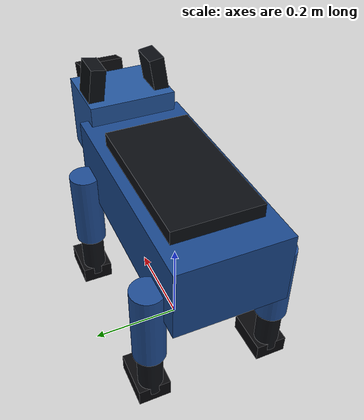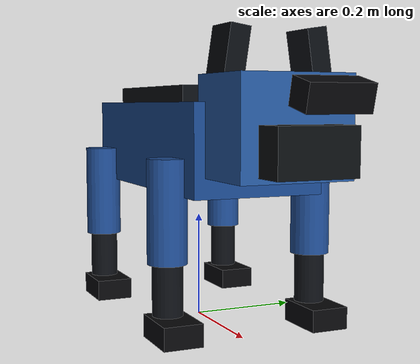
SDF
<?xml version="1.0"?>
<sdf version="1.10">
  <model name="generic_quadruped">
    <self_collide>false</self_collide>
    <allow_auto_disable>false</allow_auto_disable>

    <link name="base_link">
      <!-- 禁用重力并由平面速度插件约束姿态，保证二维雷达始终与地面平行。 -->
      <gravity>false</gravity>
      <kinematic>true</kinematic>
      <inertial>
        <pose>0 0 0.08 0 0 0</pose>
        <mass>12.0</mass>
        <inertia>
          <ixx>0.22</ixx><iyy>0.42</iyy><izz>0.55</izz>
          <ixy>0</ixy><ixz>0</ixz><iyz>0</iyz>
        </inertia>
      </inertial>

      <!--
        刻意不放置碰撞体：这是不会与场地发生动力学接触的“幽灵载体”。Nav2 和
        navigation_speed_gate 仍会依据真实仿真传感器停车/绕行，但直接发布 /cmd_vel 时不会
        因接触力把机身掀翻。真实碰撞、站立和越障必须等正式四足动力学模型完成后验证。
      -->

      <!-- 机身、头部与传感器背板。 -->
      <visual name="body">
        <visibility_flags>0x02</visibility_flags>
        <pose>0 0 0.34 0 0 0</pose>
        <geometry><box><size>0.52 0.24 0.16</size></box></geometry>
        <material><ambient>0.08 0.12 0.20 1</ambient><diffuse>0.10 0.28 0.55 1</diffuse></material>
      </visual>
      <visual name="body_top">
        <visibility_flags>0x02</visibility_flags>
        <pose>-0.02 0 0.435 0 0 0</pose>
        <geometry><box><size>0.34 0.19 0.03</size></box></geometry>
        <material><diffuse>0.04 0.05 0.07 1</diffuse></material>
      </visual>
      <visual name="head">
        <visibility_flags>0x02</visibility_flags>
        <pose>0.31 0 0.38 0 0 0</pose>
        <geometry><box><size>0.16 0.20 0.17</size></box></geometry>
        <material><ambient>0.10 0.14 0.22 1</ambient><diffuse>0.14 0.34 0.62 1</diffuse></material>
      </visual>
      <visual name="muzzle">
        <visibility_flags>0x02</visibility_flags>
        <pose>0.415 0 0.345 0 0 0</pose>
        <geometry><box><size>0.07 0.14 0.08</size></box></geometry>
        <material><diffuse>0.04 0.05 0.06 1</diffuse></material>
      </visual>
      <visual name="left_ear">
        <visibility_flags>0x02</visibility_flags>
        <pose>0.29 0.075 0.49 0.15 0 0</pose>
        <geometry><box><size>0.07 0.035 0.10</size></box></geometry>
        <material><diffuse>0.04 0.05 0.07 1</diffuse></material>
      </visual>
      <visual name="right_ear">
        <visibility_flags>0x02</visibility_flags>
        <pose>0.29 -0.075 0.49 -0.15 0 0</pose>
        <geometry><box><size>0.07 0.035 0.10</size></box></geometry>
        <material><diffuse>0.04 0.05 0.07 1</diffuse></material>
      </visual>

      <!-- 四条固定腿只表达通用四足外形，不发布关节状态，也不实现步态。 -->
      <visual name="front_left_upper"><visibility_flags>0x02</visibility_flags><pose>0.19 0.14 0.235 0 0 0</pose><geometry><cylinder><radius>0.035</radius><length>0.18</length></cylinder></geometry><material><diffuse>0.12 0.30 0.58 1</diffuse></material></visual>
      <visual name="front_left_lower"><visibility_flags>0x02</visibility_flags><pose>0.19 0.14 0.105 0 0 0</pose><geometry><cylinder><radius>0.027</radius><length>0.14</length></cylinder></geometry><material><diffuse>0.05 0.06 0.08 1</diffuse></material></visual>
      <visual name="front_right_upper"><visibility_flags>0x02</visibility_flags><pose>0.19 -0.14 0.235 0 0 0</pose><geometry><cylinder><radius>0.035</radius><length>0.18</length></cylinder></geometry><material><diffuse>0.12 0.30 0.58 1</diffuse></material></visual>
      <visual name="front_right_lower"><visibility_flags>0x02</visibility_flags><pose>0.19 -0.14 0.105 0 0 0</pose><geometry><cylinder><radius>0.027</radius><length>0.14</length></cylinder></geometry><material><diffuse>0.05 0.06 0.08 1</diffuse></material></visual>
      <visual name="rear_left_upper"><visibility_flags>0x02</visibility_flags><pose>-0.19 0.14 0.235 0 0 0</pose><geometry><cylinder><radius>0.035</radius><length>0.18</length></cylinder></geometry><material><diffuse>0.12 0.30 0.58 1</diffuse></material></visual>
      <visual name="rear_left_lower"><visibility_flags>0x02</visibility_flags><pose>-0.19 0.14 0.105 0 0 0</pose><geometry><cylinder><radius>0.027</radius><length>0.14</length></cylinder></geometry><material><diffuse>0.05 0.06 0.08 1</diffuse></material></visual>
      <visual name="rear_right_upper"><visibility_flags>0x02</visibility_flags><pose>-0.19 -0.14 0.235 0 0 0</pose><geometry><cylinder><radius>0.035</radius><length>0.18</length></cylinder></geometry><material><diffuse>0.12 0.30 0.58 1</diffuse></material></visual>
      <visual name="rear_right_lower"><visibility_flags>0x02</visibility_flags><pose>-0.19 -0.14 0.105 0 0 0</pose><geometry><cylinder><radius>0.027</radius><length>0.14</length></cylinder></geometry><material><diffuse>0.05 0.06 0.08 1</diffuse></material></visual>
      <visual name="front_left_foot"><visibility_flags>0x02</visibility_flags><pose>0.215 0.14 0.035 0 0 0</pose><geometry><box><size>0.10 0.07 0.04</size></box></geometry><material><diffuse>0.03 0.03 0.04 1</diffuse></material></visual>
      <visual name="front_right_foot"><visibility_flags>0x02</visibility_flags><pose>0.215 -0.14 0.035 0 0 0</pose><geometry><box><size>0.10 0.07 0.04</size></box></geometry><material><diffuse>0.03 0.03 0.04 1</diffuse></material></visual>
      <visual name="rear_left_foot"><visibility_flags>0x02</visibility_flags><pose>-0.165 0.14 0.035 0 0 0</pose><geometry><box><size>0.10 0.07 0.04</size></box></geometry><material><diffuse>0.03 0.03 0.04 1</diffuse></material></visual>
      <visual name="rear_right_foot"><visibility_flags>0x02</visibility_flags><pose>-0.165 -0.14 0.035 0 0 0</pose><geometry><box><size>0.10 0.07 0.04</size></box></geometry><material><diffuse>0.03 0.03 0.04 1</diffuse></material></visual>
    </link>

    <!--
      SLAM 测试雷达安装在机身中心、离地 0.28 m，采用常见 360° 单线扫描。测试替身
      的外观统一使用 0x02 可见位，而雷达只接收 0x01，因此不会把自己的身体/腿画进
      地图；场地模型未限制可见位，仍会被完整扫描。12 m 量程足够覆盖 14 m × 6 m 赛场。
    -->
    <link name="lidar_link">
      <pose>0 0 0.28 0 0 0</pose>
      <gravity>false</gravity>
      <inertial><mass>0.12</mass><inertia><ixx>0.0002</ixx><iyy>0.0002</iyy><izz>0.0002</izz><ixy>0</ixy><ixz>0</ixz><iyz>0</iyz></inertia></inertial>
      <visual name="visual"><visibility_flags>0x02</visibility_flags><geometry><cylinder><radius>0.038</radius><length>0.045</length></cylinder></geometry><material><diffuse>0.02 0.02 0.025 1</diffuse></material></visual>
      <sensor name="lidar" type="gpu_lidar">
        <topic>/scan</topic><update_rate>15</update_rate><gz_frame_id>lidar_link</gz_frame_id>
        <lidar>
          <scan><horizontal><samples>720</samples><resolution>1</resolution><min_angle>-3.141593</min_angle><max_angle>3.141593</max_angle></horizontal></scan>
          <range><min>0.10</min><max>12.0</max><resolution>0.01</resolution></range>
          <noise><type>gaussian</type><mean>0</mean><stddev>0.003</stddev></noise>
          <visibility_mask>0x01</visibility_mask>
        </lidar>
        <!-- 关闭 Gazebo 自身扫描线叠层，不影响 /scan；RViz 仍可直接显示真实数据。 -->
        <always_on>true</always_on><visualize>false</visualize>
      </sensor>
    </link>
    <joint name="lidar_fixed" type="fixed"><parent>base_link</parent><child>lidar_link</child></joint>

    <link name="imu_link">
      <pose>0 0 0.38 0 0 0</pose><gravity>false</gravity>
      <inertial><mass>0.05</mass><inertia><ixx>0.00005</ixx><iyy>0.00005</iyy><izz>0.00005</izz><ixy>0</ixy><ixz>0</ixz><iyz>0</iyz></inertia></inertial>
      <sensor name="imu" type="imu">
        <topic>/imu/data</topic><update_rate>100</update_rate><gz_frame_id>imu_link</gz_frame_id>
        <always_on>true</always_on>
      </sensor>
    </link>
    <joint name="imu_fixed" type="fixed"><parent>base_link</parent><child>imu_link</child></joint>

    <link name="camera_link">
      <!--
        光心放在机头最前端之外，向下俯视约 14°。相机外观相对光心后移，避免 RGBD
        射线从自身外壳内部出发而得到单色图或全 Inf 深度。不要在 RGBD 上使用
        visibility_mask：Gazebo Harmonic 的深度渲染在部分显卡驱动上会把场景一并过滤。
      -->
      <pose>0.52 0 0.42 0 0.24 0</pose><gravity>false</gravity>
      <inertial><mass>0.16</mass><inertia><ixx>0.0003</ixx><iyy>0.0003</iyy><izz>0.0003</izz><ixy>0</ixy><ixz>0</ixz><iyz>0</iyz></inertia></inertial>
      <visual name="visual"><visibility_flags>0x02</visibility_flags><pose>-0.04 0 0 0 0 0</pose><geometry><box><size>0.05 0.11 0.045</size></box></geometry><material><diffuse>0.03 0.03 0.04 1</diffuse></material></visual>
      <sensor name="rgbd" type="rgbd_camera">
        <topic>/camera</topic><update_rate>15</update_rate><gz_frame_id>camera_optical_frame</gz_frame_id>
        <camera>
          <horizontal_fov>1.396263</horizontal_fov>
          <!--
            424×240 是 RK3588/RealSense 常用轻量档。算法使用归一化面积和框比例，不
            依赖固定分辨率；降低仿真像素数可避免 Gazebo、OpenCV 和点云分析互相抢占
            算力。真机仍可直接发布 640×480 或更高分辨率，无需修改算法或话题。
          -->
          <image><width>424</width><height>240</height><format>R8G8B8</format></image>
          <clip><near>0.12</near><far>8.0</far></clip>
          <depth_camera><clip><near>0.12</near><far>8.0</far></clip></depth_camera>
          <optical_frame_id>camera_optical_frame</optical_frame_id>
        </camera>
        <!-- 标注图由 RViz 显示，Gazebo 不重复绘制传感器调试叠层。 -->
        <always_on>true</always_on><visualize>false</visualize>
      </sensor>
    </link>
    <joint name="camera_fixed" type="fixed"><parent>base_link</parent><child>camera_link</child></joint>

    <!-- 平面测试运动和仿真真值二维里程计；二者都不属于真实四足控制。 -->
    <plugin filename="gz-sim-velocity-control-system" name="gz::sim::systems::VelocityControl">
      <topic>/cmd_vel</topic>
    </plugin>
    <plugin filename="gz-sim-odometry-publisher-system" name="gz::sim::systems::OdometryPublisher">
      <odom_frame>odom</odom_frame><robot_base_frame>base_link</robot_base_frame>
      <dimensions>2</dimensions><odom_topic>/odom</odom_topic><tf_topic>/tf</tf_topic>
      <odom_publish_frequency>30</odom_publish_frequency>
    </plugin>
  </model>
</sdf>
